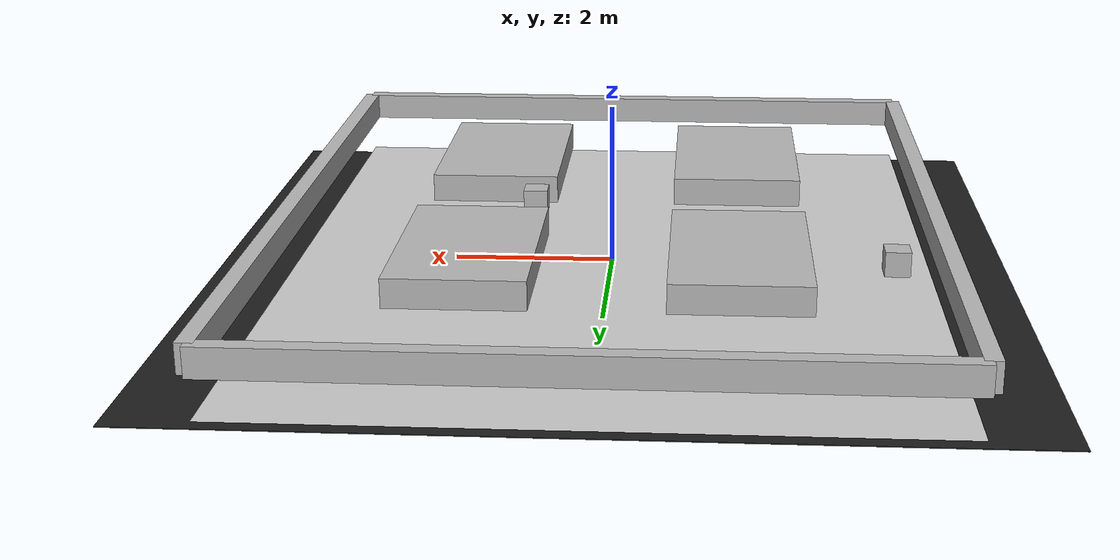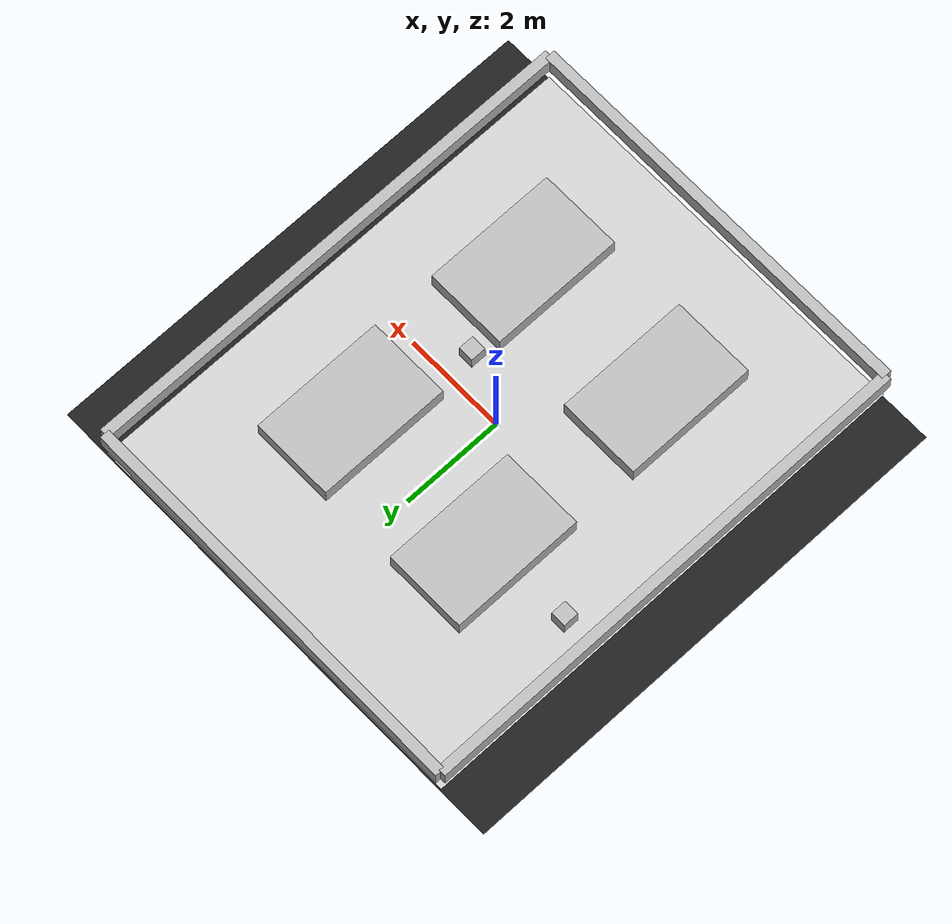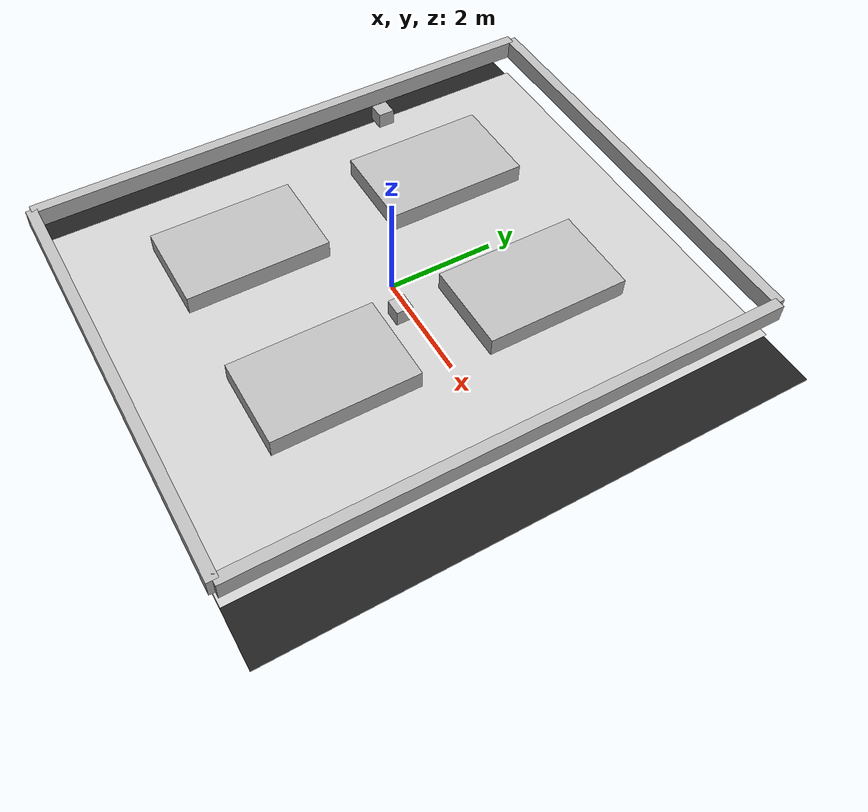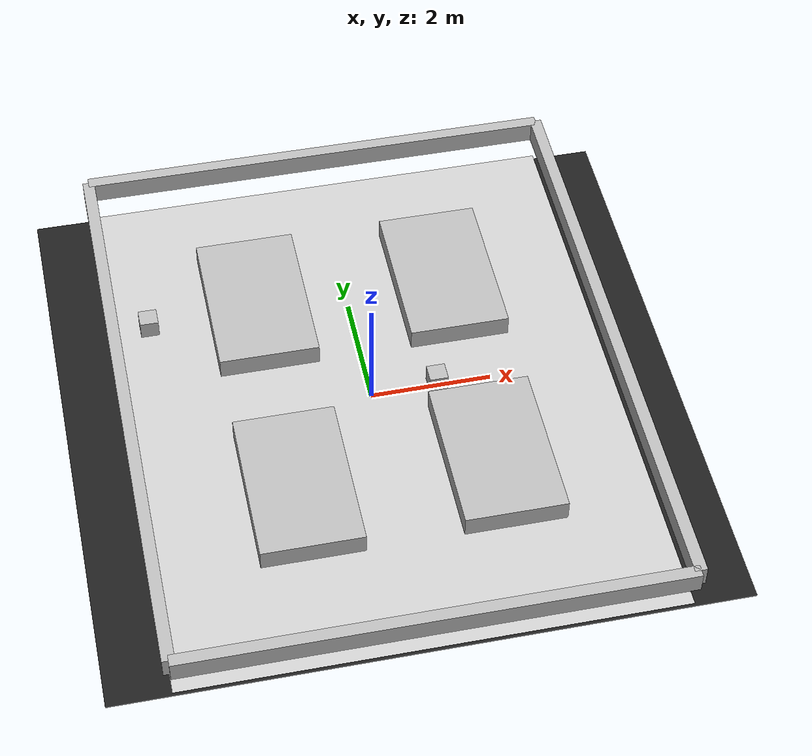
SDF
<sdf version="1.6">
 <world name="default">
  <scene>
   <ambient>0 0 0 1</ambient>
   <shadows>0</shadows>
   <grid>0</grid>
   <background>0.7 0.7 0.7 1</background>
  </scene>
  <include><uri>model://course1</uri><scale>3 3 3</scale></include>
  <model name="wall0">
   <pose>0 5 0.17 0 0 1.57</pose>
   <link name="link">
    <pose>0 0 .5 0 0 0</pose>
    <collision name="collision"><geometry><box><size>0.2 8 0.35</size></box></geometry></collision>
    <visual name="visual"><geometry><box><size>0.2 8 0.35</size></box></geometry></visual>
   </link>
  </model>
  <model name="wall1">
   <pose>0 -5 0.17 0 0 1.57</pose>
   <link name="link">
    <pose>0 0 .5 0 0 0</pose>
    <collision name="collision"><geometry><box><size>0.2 8 0.35</size></box></geometry></collision>
    <visual name="visual"><geometry><box><size>0.2 8 0.35</size></box></geometry></visual>
   </link>
  </model>
  <model name="wall2">
   <pose>-4 0 0.17 0 0 0</pose>
   <link name="link">
    <pose>0 0 .5 0 0 0</pose>
    <collision name="collision"><geometry><box><size>0.2 10 0.35</size></box></geometry></collision>
    <visual name="visual"><geometry><box><size>0.2 10 0.35</size></box></geometry></visual>
   </link>
  </model>
  <model name="wall3">
   <pose>4 0 0.17 0 0 0</pose>
   <link name="link">
    <pose>0 0 .5 0 0 0</pose>
    <collision name="collision"><geometry><box><size>0.2 10 0.35</size></box></geometry></collision>
    <visual name="visual"><geometry><box><size>0.2 10 0.35</size></box></geometry></visual>
   </link>
  </model>
  <model name="box0">
   <pose>-1.58 1.78 0.17 0 0 0</pose>
   <link name="link">
    <pose>0 0 .5 0 0 0</pose>
    <collision name="collision"><geometry><box><size>1.63 2.61 0.35</size></box></geometry></collision>
    <visual name="visual"><geometry><box><size>1.63 2.61 0.35</size></box></geometry></visual>
   </link>
  </model>
  <model name="box1">
   <pose>1.58 1.78 0.17 0 0 0</pose>
   <link name="link">
    <pose>0 0 .5 0 0 0</pose>
    <collision name="collision"><geometry><box><size>1.63 2.61 0.35</size></box></geometry></collision>
    <visual name="visual"><geometry><box><size>1.63 2.61 0.35</size></box></geometry></visual>
   </link>
  </model>
  <model name="box2">
   <pose>1.58 -2.1 0.17 0 0 0</pose>
   <link name="link">
    <pose>0 0 .5 0 0 0</pose>
    <collision name="collision"><geometry><box><size>1.63 2.61 0.35</size></box></geometry></collision>
    <visual name="visual"><geometry><box><size>1.63 2.61 0.35</size></box></geometry></visual>
   </link>
  </model>
  <model name="box3">
   <pose>-1.58 -2.1 0.17 0 0 0</pose>
   <link name="link">
    <pose>0 0 .5 0 0 0</pose>
    <collision name="collision"><geometry><box><size>1.63 2.61 0.35</size></box></geometry></collision>
    <visual name="visual"><geometry><box><size>1.63 2.61 0.35</size></box></geometry></visual>
   </link>
  </model>
  <model name="box4">
   <pose>-3.4 1.7 0.17 0 0 0</pose>
   <link name="link">
    <pose>0 0 .5 0 0 0</pose>
    <collision name="collision"><geometry><box><size>0.3 0.3 0.3</size></box></geometry></collision>
    <visual name="visual"><geometry><box><size>0.3 0.3 0.3</size></box></geometry></visual>
   </link>
  </model>
  <model name="box5">
   <pose>1 -0.4 0.17 0 0 0</pose>
   <link name="link">
    <pose>0 0 .5 0 0 0</pose>
    <collision name="collision"><geometry><box><size>0.3 0.3 0.3</size></box></geometry></collision>
    <visual name="visual"><geometry><box><size>0.3 0.3 0.3</size></box></geometry></visual>
   </link>
  </model>
  <light name="sun" type="directional">
   <pose>0 0 10 0 -0 0</pose>
   <diffuse>0.8 0.8 0.8 1</diffuse>
   <specular>0.1 0.1 0.1 1</specular>
   <attenuation>
    <range>1000</range>
    <constant>0.9</constant>
    <linear>0.01</linear>
    <quadratic>0.001</quadratic>
   </attenuation>
   <direction>-0.5 0.5 -1</direction>
  </light>
  <model name="ground2">
   <pose>0 0 -0.1 0 -0 0</pose>
   <static>1</static>
   <link name="ground">
    <collision name="ground_coll"><geometry><box><size>8 8 0.01</size></box></geometry></collision>
    <visual name="ground_vis">
     <geometry><box><size>10 10 0.01</size></box></geometry>
     <material>
      <script><uri>file://media/materials/scripts/gazebo.material</uri><name>Gazebo/FlatBlack</name></script>
     </material>
    </visual>
   </link>
  </model>
  <gravity>0 0 -9.8</gravity>
  <magnetic_field>6e-06 2.3e-05 -4.2e-05</magnetic_field>
  <atmosphere type="adiabatic"/>
  <physics name="default_physics" default="0" type="ode">
   <max_step_size>0.001</max_step_size>
   <real_time_factor>1</real_time_factor>
   <real_time_update_rate>1000</real_time_update_rate>
  </physics>
  <spherical_coordinates>
   <surface_model>EARTH_WGS84</surface_model>
   <latitude_deg>0</latitude_deg>
   <longitude_deg>0</longitude_deg>
   <elevation>0</elevation>
   <heading_deg>0</heading_deg>
  </spherical_coordinates>
  <light name="user_point_light_2" type="point">
   <pose>-0.948146 0.604519 1 0 -0 0</pose>
   <diffuse>0.5 0.5 0.5 1</diffuse>
   <specular>0.1 0.1 0.1 1</specular>
   <attenuation>
    <range>20</range>
    <constant>0.5</constant>
    <linear>0.01</linear>
    <quadratic>0.001</quadratic>
   </attenuation>
   <cast_shadows>0</cast_shadows>
   <direction>0 0 -1</direction>
  </light>
  <light name="user_point_light_6" type="point">
   <pose>1.63854 1.69565 1 0 -0 0</pose>
   <diffuse>0.5 0.5 0.5 1</diffuse>
   <specular>0.1 0.1 0.1 1</specular>
   <attenuation>
    <range>20</range>
    <constant>0.5</constant>
    <linear>0.01</linear>
    <quadratic>0.001</quadratic>
   </attenuation>
   <cast_shadows>0</cast_shadows>
   <direction>0 0 -1</direction>
  </light>
  <light name="user_point_light_8" type="point">
   <pose>-1.8 1.5 1 0 -0 0</pose>
   <diffuse>0.5 0.5 0.5 1</diffuse>
   <specular>0.1 0.1 0.1 1</specular>
   <attenuation>
    <range>20</range>
    <constant>0.5</constant>
    <linear>0.01</linear>
    <quadratic>0.001</quadratic>
   </attenuation>
   <cast_shadows>0</cast_shadows>
   <direction>0 0 -1</direction>
  </light>
 </world>
</sdf>

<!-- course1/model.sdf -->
<sdf version="1.6">
  <model name="course">
    <static>true</static>
    <link name="course_link">
      <collision name="course_collision">
        <geometry>
          <plane>
            <normal>0 0 1</normal>
            <size>4 4</size>
          </plane>
        </geometry>
        <surface>
          <friction>
            <ode>
              <mu>100</mu>
              <mu2>50</mu2>
            </ode>
          </friction>
        </surface>
      </collision>
      <visual name="course_visual">
        <cast_shadows>false</cast_shadows>
        <geometry>
	        <plane>
            <normal>0 0 1</normal>
            <size>8 10</size>
          </plane>
        </geometry>
	      <material>
          <script>
            <uri>model://course1/materials/scripts</uri>
            <uri>model://course1/materials/textures</uri>
            <name>course</name>
          </script>
        </material>
      </visual>
    </link>
  </model>
</sdf>
